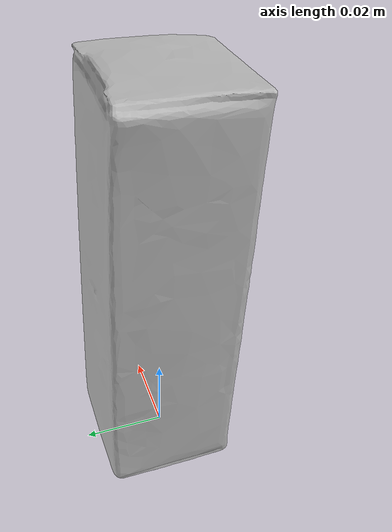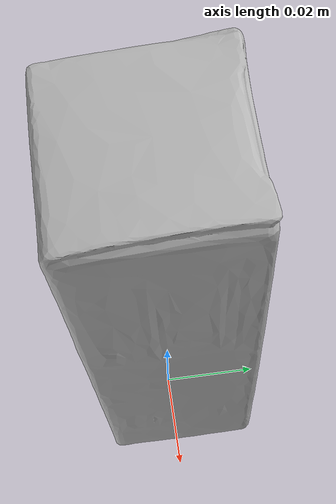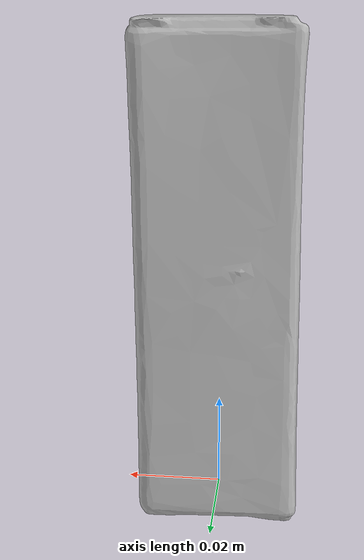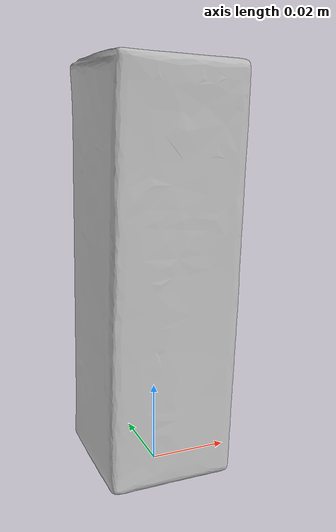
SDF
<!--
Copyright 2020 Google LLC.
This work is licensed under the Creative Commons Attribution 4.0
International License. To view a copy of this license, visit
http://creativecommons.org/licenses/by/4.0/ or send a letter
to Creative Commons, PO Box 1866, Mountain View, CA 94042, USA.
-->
<?xml version="1.0" ?>
<sdf version="1.6">
  <model name='Nestle_Nesquik_Chocolate_Powder_Flavored_Milk_Additive_109_Oz_Canister'>
      <link name='link_0'>
        <visual name='visual'>
          <geometry>
            <mesh>
              <uri>meshes/model.obj</uri>
            </mesh>
          </geometry>
        </visual>
        <collision name='collision_0'>
          <geometry>
            <mesh>
              <uri>meshes/model.obj</uri>
            </mesh>
          </geometry>
        </collision>
        <pose>0 0 0 0 0 0</pose>
        <inertial>
          <pose>0 0 0 0 0 0</pose>
          <mass>1</mass>
          <inertia>
            <ixx>1</ixx>
            <ixy>0</ixy>
            <ixz>0</ixz>
            <iyy>1</iyy>
            <iyz>0</iyz>
            <izz>1</izz>
          </inertia>
        </inertial>
        <enable_wind>false</enable_wind>
      </link>
      <static>false</static>
      <self_collide>false</self_collide>
    </model>
</sdf>
